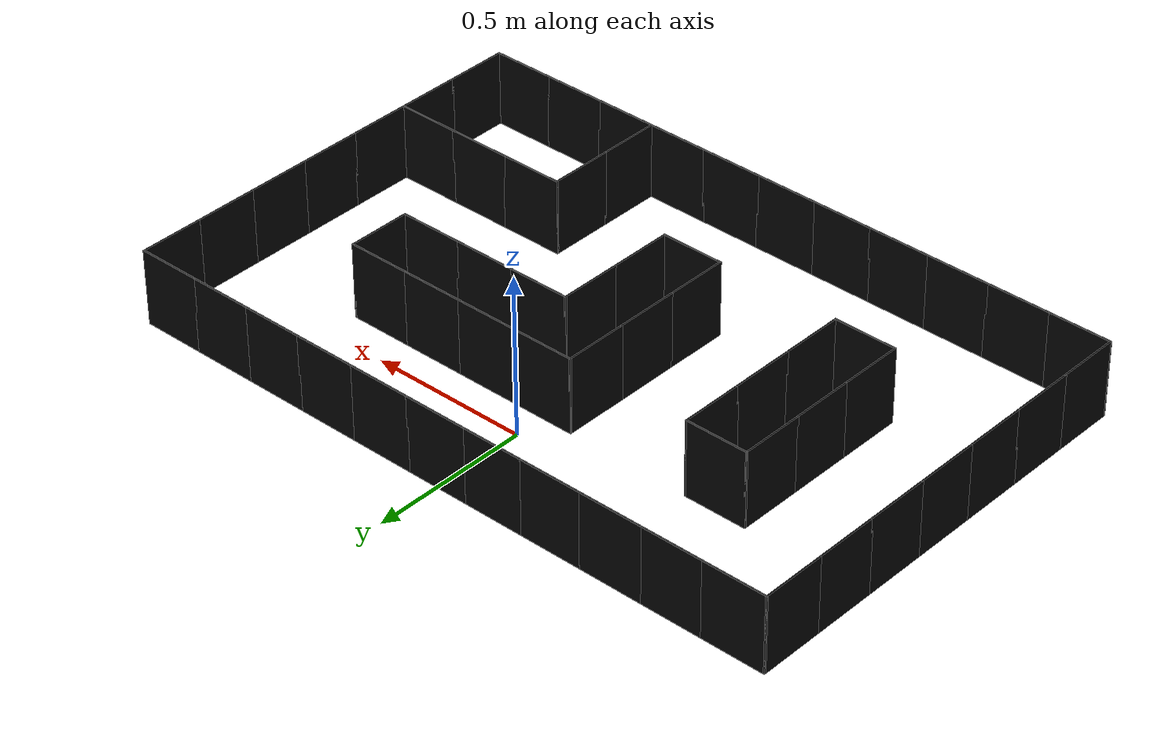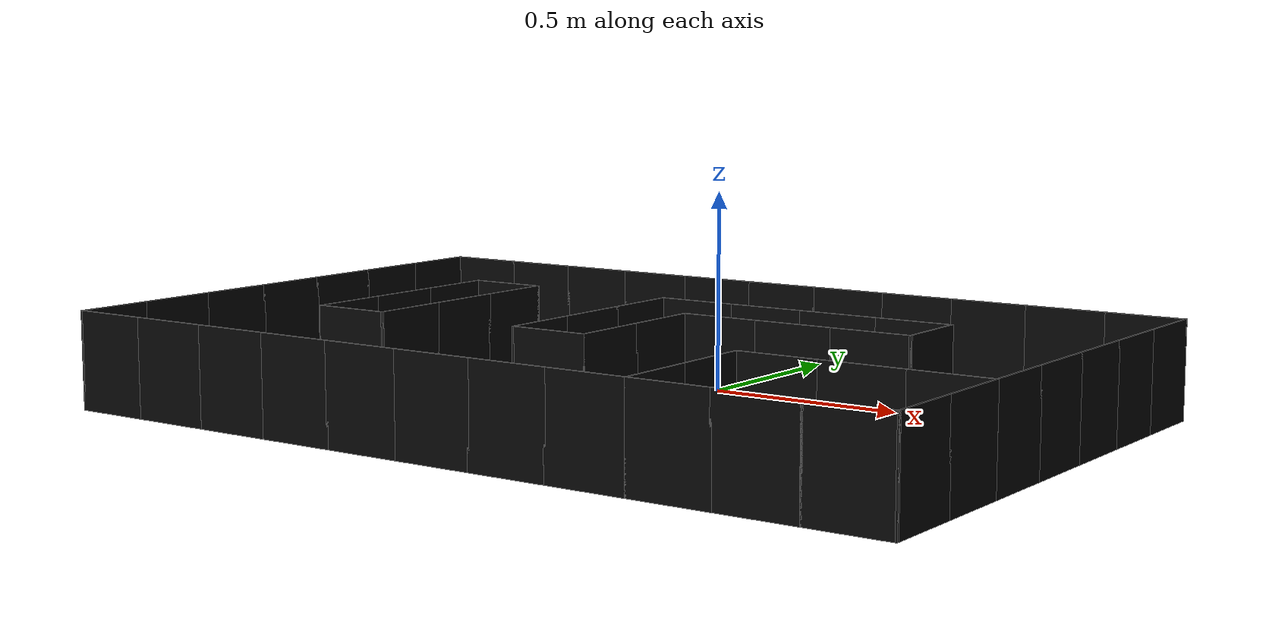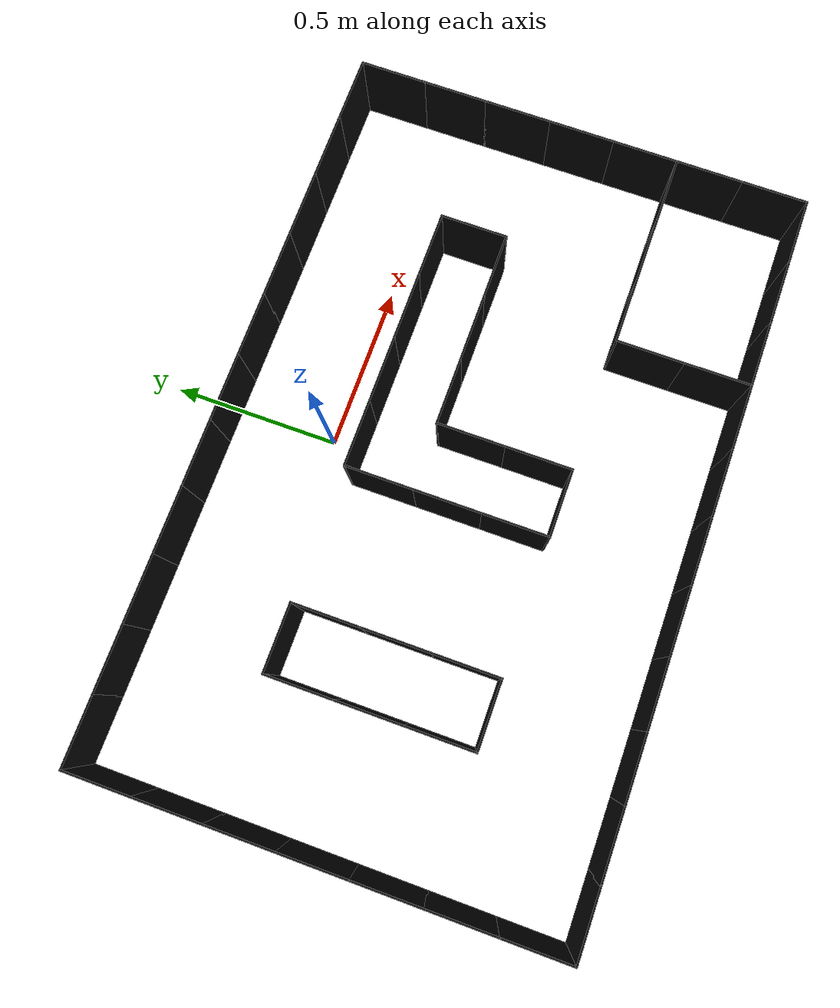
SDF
<?xml version="1.0" ?>
<sdf version="1.9">
  <model name="maze_grid">
    <static>true</static>
    <link name="h_0_0">
      <pose>-0.990 -1.089 0.120 0 0 0.000000</pose>
      <collision name="c">
        <geometry><box><size>0.203 0.005 0.240</size></box></geometry>
      </collision>
      <visual name="v">
        <geometry><box><size>0.203 0.005 0.240</size></box></geometry>
        <material>
          <ambient>0.01 0.01 0.01 1</ambient>
          <diffuse>0.02 0.02 0.02 1</diffuse>
        </material>
      </visual>
    </link>
    <link name="h_0_1">
      <pose>-0.792 -1.089 0.120 0 0 0.000000</pose>
      <collision name="c">
        <geometry><box><size>0.203 0.005 0.240</size></box></geometry>
      </collision>
      <visual name="v">
        <geometry><box><size>0.203 0.005 0.240</size></box></geometry>
        <material>
          <ambient>0.01 0.01 0.01 1</ambient>
          <diffuse>0.02 0.02 0.02 1</diffuse>
        </material>
      </visual>
    </link>
    <link name="h_0_2">
      <pose>-0.594 -1.089 0.120 0 0 0.000000</pose>
      <collision name="c">
        <geometry><box><size>0.203 0.005 0.240</size></box></geometry>
      </collision>
      <visual name="v">
        <geometry><box><size>0.203 0.005 0.240</size></box></geometry>
        <material>
          <ambient>0.01 0.01 0.01 1</ambient>
          <diffuse>0.02 0.02 0.02 1</diffuse>
        </material>
      </visual>
    </link>
    <link name="h_0_3">
      <pose>-0.396 -1.089 0.120 0 0 0.000000</pose>
      <collision name="c">
        <geometry><box><size>0.203 0.005 0.240</size></box></geometry>
      </collision>
      <visual name="v">
        <geometry><box><size>0.203 0.005 0.240</size></box></geometry>
        <material>
          <ambient>0.01 0.01 0.01 1</ambient>
          <diffuse>0.02 0.02 0.02 1</diffuse>
        </material>
      </visual>
    </link>
    <link name="h_0_4">
      <pose>-0.198 -1.089 0.120 0 0 0.000000</pose>
      <collision name="c">
        <geometry><box><size>0.203 0.005 0.240</size></box></geometry>
      </collision>
      <visual name="v">
        <geometry><box><size>0.203 0.005 0.240</size></box></geometry>
        <material>
          <ambient>0.01 0.01 0.01 1</ambient>
          <diffuse>0.02 0.02 0.02 1</diffuse>
        </material>
      </visual>
    </link>
    <link name="h_0_5">
      <pose>0.000 -1.089 0.120 0 0 0.000000</pose>
      <collision name="c">
        <geometry><box><size>0.203 0.005 0.240</size></box></geometry>
      </collision>
      <visual name="v">
        <geometry><box><size>0.203 0.005 0.240</size></box></geometry>
        <material>
          <ambient>0.01 0.01 0.01 1</ambient>
          <diffuse>0.02 0.02 0.02 1</diffuse>
        </material>
      </visual>
    </link>
    <link name="h_0_6">
      <pose>0.198 -1.089 0.120 0 0 0.000000</pose>
      <collision name="c">
        <geometry><box><size>0.203 0.005 0.240</size></box></geometry>
      </collision>
      <visual name="v">
        <geometry><box><size>0.203 0.005 0.240</size></box></geometry>
        <material>
          <ambient>0.01 0.01 0.01 1</ambient>
          <diffuse>0.02 0.02 0.02 1</diffuse>
        </material>
      </visual>
    </link>
    <link name="h_0_7">
      <pose>0.396 -1.089 0.120 0 0 0.000000</pose>
      <collision name="c">
        <geometry><box><size>0.203 0.005 0.240</size></box></geometry>
      </collision>
      <visual name="v">
        <geometry><box><size>0.203 0.005 0.240</size></box></geometry>
        <material>
          <ambient>0.01 0.01 0.01 1</ambient>
          <diffuse>0.02 0.02 0.02 1</diffuse>
        </material>
      </visual>
    </link>
    <link name="h_0_8">
      <pose>0.594 -1.089 0.120 0 0 0.000000</pose>
      <collision name="c">
        <geometry><box><size>0.203 0.005 0.240</size></box></geometry>
      </collision>
      <visual name="v">
        <geometry><box><size>0.203 0.005 0.240</size></box></geometry>
        <material>
          <ambient>0.01 0.01 0.01 1</ambient>
          <diffuse>0.02 0.02 0.02 1</diffuse>
        </material>
      </visual>
    </link>
    <link name="h_0_9">
      <pose>0.792 -1.089 0.120 0 0 0.000000</pose>
      <collision name="c">
        <geometry><box><size>0.203 0.005 0.240</size></box></geometry>
      </collision>
      <visual name="v">
        <geometry><box><size>0.203 0.005 0.240</size></box></geometry>
        <material>
          <ambient>0.01 0.01 0.01 1</ambient>
          <diffuse>0.02 0.02 0.02 1</diffuse>
        </material>
      </visual>
    </link>
    <link name="h_0_10">
      <pose>0.990 -1.089 0.120 0 0 0.000000</pose>
      <collision name="c">
        <geometry><box><size>0.203 0.005 0.240</size></box></geometry>
      </collision>
      <visual name="v">
        <geometry><box><size>0.203 0.005 0.240</size></box></geometry>
        <material>
          <ambient>0.01 0.01 0.01 1</ambient>
          <diffuse>0.02 0.02 0.02 1</diffuse>
        </material>
      </visual>
    </link>
    <link name="h_2_2">
      <pose>-0.594 -0.693 0.120 0 0 0.000000</pose>
      <collision name="c">
        <geometry><box><size>0.203 0.005 0.240</size></box></geometry>
      </collision>
      <visual name="v">
        <geometry><box><size>0.203 0.005 0.240</size></box></geometry>
        <material>
          <ambient>0.01 0.01 0.01 1</ambient>
          <diffuse>0.02 0.02 0.02 1</diffuse>
        </material>
      </visual>
    </link>
    <link name="h_2_5">
      <pose>0.000 -0.693 0.120 0 0 0.000000</pose>
      <collision name="c">
        <geometry><box><size>0.203 0.005 0.240</size></box></geometry>
      </collision>
      <visual name="v">
        <geometry><box><size>0.203 0.005 0.240</size></box></geometry>
        <material>
          <ambient>0.01 0.01 0.01 1</ambient>
          <diffuse>0.02 0.02 0.02 1</diffuse>
        </material>
      </visual>
    </link>
    <link name="h_2_8">
      <pose>0.594 -0.693 0.120 0 0 0.000000</pose>
      <collision name="c">
        <geometry><box><size>0.203 0.005 0.240</size></box></geometry>
      </collision>
      <visual name="v">
        <geometry><box><size>0.203 0.005 0.240</size></box></geometry>
        <material>
          <ambient>0.01 0.01 0.01 1</ambient>
          <diffuse>0.02 0.02 0.02 1</diffuse>
        </material>
      </visual>
    </link>
    <link name="h_2_9">
      <pose>0.792 -0.693 0.120 0 0 0.000000</pose>
      <collision name="c">
        <geometry><box><size>0.203 0.005 0.240</size></box></geometry>
      </collision>
      <visual name="v">
        <geometry><box><size>0.203 0.005 0.240</size></box></geometry>
        <material>
          <ambient>0.01 0.01 0.01 1</ambient>
          <diffuse>0.02 0.02 0.02 1</diffuse>
        </material>
      </visual>
    </link>
    <link name="h_2_10">
      <pose>0.990 -0.693 0.120 0 0 0.000000</pose>
      <collision name="c">
        <geometry><box><size>0.203 0.005 0.240</size></box></geometry>
      </collision>
      <visual name="v">
        <geometry><box><size>0.203 0.005 0.240</size></box></geometry>
        <material>
          <ambient>0.01 0.01 0.01 1</ambient>
          <diffuse>0.02 0.02 0.02 1</diffuse>
        </material>
      </visual>
    </link>
    <link name="h_4_6">
      <pose>0.198 -0.297 0.120 0 0 0.000000</pose>
      <collision name="c">
        <geometry><box><size>0.203 0.005 0.240</size></box></geometry>
      </collision>
      <visual name="v">
        <geometry><box><size>0.203 0.005 0.240</size></box></geometry>
        <material>
          <ambient>0.01 0.01 0.01 1</ambient>
          <diffuse>0.02 0.02 0.02 1</diffuse>
        </material>
      </visual>
    </link>
    <link name="h_4_7">
      <pose>0.396 -0.297 0.120 0 0 0.000000</pose>
      <collision name="c">
        <geometry><box><size>0.203 0.005 0.240</size></box></geometry>
      </collision>
      <visual name="v">
        <geometry><box><size>0.203 0.005 0.240</size></box></geometry>
        <material>
          <ambient>0.01 0.01 0.01 1</ambient>
          <diffuse>0.02 0.02 0.02 1</diffuse>
        </material>
      </visual>
    </link>
    <link name="h_4_8">
      <pose>0.594 -0.297 0.120 0 0 0.000000</pose>
      <collision name="c">
        <geometry><box><size>0.203 0.005 0.240</size></box></geometry>
      </collision>
      <visual name="v">
        <geometry><box><size>0.203 0.005 0.240</size></box></geometry>
        <material>
          <ambient>0.01 0.01 0.01 1</ambient>
          <diffuse>0.02 0.02 0.02 1</diffuse>
        </material>
      </visual>
    </link>
    <link name="h_5_2">
      <pose>-0.594 -0.099 0.120 0 0 0.000000</pose>
      <collision name="c">
        <geometry><box><size>0.203 0.005 0.240</size></box></geometry>
      </collision>
      <visual name="v">
        <geometry><box><size>0.203 0.005 0.240</size></box></geometry>
        <material>
          <ambient>0.01 0.01 0.01 1</ambient>
          <diffuse>0.02 0.02 0.02 1</diffuse>
        </material>
      </visual>
    </link>
    <link name="h_5_5">
      <pose>0.000 -0.099 0.120 0 0 0.000000</pose>
      <collision name="c">
        <geometry><box><size>0.203 0.005 0.240</size></box></geometry>
      </collision>
      <visual name="v">
        <geometry><box><size>0.203 0.005 0.240</size></box></geometry>
        <material>
          <ambient>0.01 0.01 0.01 1</ambient>
          <diffuse>0.02 0.02 0.02 1</diffuse>
        </material>
      </visual>
    </link>
    <link name="h_5_6">
      <pose>0.198 -0.099 0.120 0 0 0.000000</pose>
      <collision name="c">
        <geometry><box><size>0.203 0.005 0.240</size></box></geometry>
      </collision>
      <visual name="v">
        <geometry><box><size>0.203 0.005 0.240</size></box></geometry>
        <material>
          <ambient>0.01 0.01 0.01 1</ambient>
          <diffuse>0.02 0.02 0.02 1</diffuse>
        </material>
      </visual>
    </link>
    <link name="h_5_7">
      <pose>0.396 -0.099 0.120 0 0 0.000000</pose>
      <collision name="c">
        <geometry><box><size>0.203 0.005 0.240</size></box></geometry>
      </collision>
      <visual name="v">
        <geometry><box><size>0.203 0.005 0.240</size></box></geometry>
        <material>
          <ambient>0.01 0.01 0.01 1</ambient>
          <diffuse>0.02 0.02 0.02 1</diffuse>
        </material>
      </visual>
    </link>
    <link name="h_5_8">
      <pose>0.594 -0.099 0.120 0 0 0.000000</pose>
      <collision name="c">
        <geometry><box><size>0.203 0.005 0.240</size></box></geometry>
      </collision>
      <visual name="v">
        <geometry><box><size>0.203 0.005 0.240</size></box></geometry>
        <material>
          <ambient>0.01 0.01 0.01 1</ambient>
          <diffuse>0.02 0.02 0.02 1</diffuse>
        </material>
      </visual>
    </link>
    <link name="h_7_0">
      <pose>-0.990 0.297 0.120 0 0 0.000000</pose>
      <collision name="c">
        <geometry><box><size>0.203 0.005 0.240</size></box></geometry>
      </collision>
      <visual name="v">
        <geometry><box><size>0.203 0.005 0.240</size></box></geometry>
        <material>
          <ambient>0.01 0.01 0.01 1</ambient>
          <diffuse>0.02 0.02 0.02 1</diffuse>
        </material>
      </visual>
    </link>
    <link name="h_7_1">
      <pose>-0.792 0.297 0.120 0 0 0.000000</pose>
      <collision name="c">
        <geometry><box><size>0.203 0.005 0.240</size></box></geometry>
      </collision>
      <visual name="v">
        <geometry><box><size>0.203 0.005 0.240</size></box></geometry>
        <material>
          <ambient>0.01 0.01 0.01 1</ambient>
          <diffuse>0.02 0.02 0.02 1</diffuse>
        </material>
      </visual>
    </link>
    <link name="h_7_2">
      <pose>-0.594 0.297 0.120 0 0 0.000000</pose>
      <collision name="c">
        <geometry><box><size>0.203 0.005 0.240</size></box></geometry>
      </collision>
      <visual name="v">
        <geometry><box><size>0.203 0.005 0.240</size></box></geometry>
        <material>
          <ambient>0.01 0.01 0.01 1</ambient>
          <diffuse>0.02 0.02 0.02 1</diffuse>
        </material>
      </visual>
    </link>
    <link name="h_7_3">
      <pose>-0.396 0.297 0.120 0 0 0.000000</pose>
      <collision name="c">
        <geometry><box><size>0.203 0.005 0.240</size></box></geometry>
      </collision>
      <visual name="v">
        <geometry><box><size>0.203 0.005 0.240</size></box></geometry>
        <material>
          <ambient>0.01 0.01 0.01 1</ambient>
          <diffuse>0.02 0.02 0.02 1</diffuse>
        </material>
      </visual>
    </link>
    <link name="h_7_4">
      <pose>-0.198 0.297 0.120 0 0 0.000000</pose>
      <collision name="c">
        <geometry><box><size>0.203 0.005 0.240</size></box></geometry>
      </collision>
      <visual name="v">
        <geometry><box><size>0.203 0.005 0.240</size></box></geometry>
        <material>
          <ambient>0.01 0.01 0.01 1</ambient>
          <diffuse>0.02 0.02 0.02 1</diffuse>
        </material>
      </visual>
    </link>
    <link name="h_7_5">
      <pose>0.000 0.297 0.120 0 0 0.000000</pose>
      <collision name="c">
        <geometry><box><size>0.203 0.005 0.240</size></box></geometry>
      </collision>
      <visual name="v">
        <geometry><box><size>0.203 0.005 0.240</size></box></geometry>
        <material>
          <ambient>0.01 0.01 0.01 1</ambient>
          <diffuse>0.02 0.02 0.02 1</diffuse>
        </material>
      </visual>
    </link>
    <link name="h_7_6">
      <pose>0.198 0.297 0.120 0 0 0.000000</pose>
      <collision name="c">
        <geometry><box><size>0.203 0.005 0.240</size></box></geometry>
      </collision>
      <visual name="v">
        <geometry><box><size>0.203 0.005 0.240</size></box></geometry>
        <material>
          <ambient>0.01 0.01 0.01 1</ambient>
          <diffuse>0.02 0.02 0.02 1</diffuse>
        </material>
      </visual>
    </link>
    <link name="h_7_7">
      <pose>0.396 0.297 0.120 0 0 0.000000</pose>
      <collision name="c">
        <geometry><box><size>0.203 0.005 0.240</size></box></geometry>
      </collision>
      <visual name="v">
        <geometry><box><size>0.203 0.005 0.240</size></box></geometry>
        <material>
          <ambient>0.01 0.01 0.01 1</ambient>
          <diffuse>0.02 0.02 0.02 1</diffuse>
        </material>
      </visual>
    </link>
    <link name="h_7_8">
      <pose>0.594 0.297 0.120 0 0 0.000000</pose>
      <collision name="c">
        <geometry><box><size>0.203 0.005 0.240</size></box></geometry>
      </collision>
      <visual name="v">
        <geometry><box><size>0.203 0.005 0.240</size></box></geometry>
        <material>
          <ambient>0.01 0.01 0.01 1</ambient>
          <diffuse>0.02 0.02 0.02 1</diffuse>
        </material>
      </visual>
    </link>
    <link name="h_7_9">
      <pose>0.792 0.297 0.120 0 0 0.000000</pose>
      <collision name="c">
        <geometry><box><size>0.203 0.005 0.240</size></box></geometry>
      </collision>
      <visual name="v">
        <geometry><box><size>0.203 0.005 0.240</size></box></geometry>
        <material>
          <ambient>0.01 0.01 0.01 1</ambient>
          <diffuse>0.02 0.02 0.02 1</diffuse>
        </material>
      </visual>
    </link>
    <link name="h_7_10">
      <pose>0.990 0.297 0.120 0 0 0.000000</pose>
      <collision name="c">
        <geometry><box><size>0.203 0.005 0.240</size></box></geometry>
      </collision>
      <visual name="v">
        <geometry><box><size>0.203 0.005 0.240</size></box></geometry>
        <material>
          <ambient>0.01 0.01 0.01 1</ambient>
          <diffuse>0.02 0.02 0.02 1</diffuse>
        </material>
      </visual>
    </link>
    <link name="v_0_0">
      <pose>-1.089 -0.990 0.120 0 0 1.570796</pose>
      <collision name="c">
        <geometry><box><size>0.203 0.005 0.240</size></box></geometry>
      </collision>
      <visual name="v">
        <geometry><box><size>0.203 0.005 0.240</size></box></geometry>
        <material>
          <ambient>0.01 0.01 0.01 1</ambient>
          <diffuse>0.02 0.02 0.02 1</diffuse>
        </material>
      </visual>
    </link>
    <link name="v_0_1">
      <pose>-1.089 -0.792 0.120 0 0 1.570796</pose>
      <collision name="c">
        <geometry><box><size>0.203 0.005 0.240</size></box></geometry>
      </collision>
      <visual name="v">
        <geometry><box><size>0.203 0.005 0.240</size></box></geometry>
        <material>
          <ambient>0.01 0.01 0.01 1</ambient>
          <diffuse>0.02 0.02 0.02 1</diffuse>
        </material>
      </visual>
    </link>
    <link name="v_0_2">
      <pose>-1.089 -0.594 0.120 0 0 1.570796</pose>
      <collision name="c">
        <geometry><box><size>0.203 0.005 0.240</size></box></geometry>
      </collision>
      <visual name="v">
        <geometry><box><size>0.203 0.005 0.240</size></box></geometry>
        <material>
          <ambient>0.01 0.01 0.01 1</ambient>
          <diffuse>0.02 0.02 0.02 1</diffuse>
        </material>
      </visual>
    </link>
    <link name="v_0_3">
      <pose>-1.089 -0.396 0.120 0 0 1.570796</pose>
      <collision name="c">
        <geometry><box><size>0.203 0.005 0.240</size></box></geometry>
      </collision>
      <visual name="v">
        <geometry><box><size>0.203 0.005 0.240</size></box></geometry>
        <material>
          <ambient>0.01 0.01 0.01 1</ambient>
          <diffuse>0.02 0.02 0.02 1</diffuse>
        </material>
      </visual>
    </link>
    <link name="v_0_4">
      <pose>-1.089 -0.198 0.120 0 0 1.570796</pose>
      <collision name="c">
        <geometry><box><size>0.203 0.005 0.240</size></box></geometry>
      </collision>
      <visual name="v">
        <geometry><box><size>0.203 0.005 0.240</size></box></geometry>
        <material>
          <ambient>0.01 0.01 0.01 1</ambient>
          <diffuse>0.02 0.02 0.02 1</diffuse>
        </material>
      </visual>
    </link>
    <link name="v_0_5">
      <pose>-1.089 0.000 0.120 0 0 1.570796</pose>
      <collision name="c">
        <geometry><box><size>0.203 0.005 0.240</size></box></geometry>
      </collision>
      <visual name="v">
        <geometry><box><size>0.203 0.005 0.240</size></box></geometry>
        <material>
          <ambient>0.01 0.01 0.01 1</ambient>
          <diffuse>0.02 0.02 0.02 1</diffuse>
        </material>
      </visual>
    </link>
    <link name="v_0_6">
      <pose>-1.089 0.198 0.120 0 0 1.570796</pose>
      <collision name="c">
        <geometry><box><size>0.203 0.005 0.240</size></box></geometry>
      </collision>
      <visual name="v">
        <geometry><box><size>0.203 0.005 0.240</size></box></geometry>
        <material>
          <ambient>0.01 0.01 0.01 1</ambient>
          <diffuse>0.02 0.02 0.02 1</diffuse>
        </material>
      </visual>
    </link>
    <link name="v_2_2">
      <pose>-0.693 -0.594 0.120 0 0 1.570796</pose>
      <collision name="c">
        <geometry><box><size>0.203 0.005 0.240</size></box></geometry>
      </collision>
      <visual name="v">
        <geometry><box><size>0.203 0.005 0.240</size></box></geometry>
        <material>
          <ambient>0.01 0.01 0.01 1</ambient>
          <diffuse>0.02 0.02 0.02 1</diffuse>
        </material>
      </visual>
    </link>
    <link name="v_2_3">
      <pose>-0.693 -0.396 0.120 0 0 1.570796</pose>
      <collision name="c">
        <geometry><box><size>0.203 0.005 0.240</size></box></geometry>
      </collision>
      <visual name="v">
        <geometry><box><size>0.203 0.005 0.240</size></box></geometry>
        <material>
          <ambient>0.01 0.01 0.01 1</ambient>
          <diffuse>0.02 0.02 0.02 1</diffuse>
        </material>
      </visual>
    </link>
    <link name="v_2_4">
      <pose>-0.693 -0.198 0.120 0 0 1.570796</pose>
      <collision name="c">
        <geometry><box><size>0.203 0.005 0.240</size></box></geometry>
      </collision>
      <visual name="v">
        <geometry><box><size>0.203 0.005 0.240</size></box></geometry>
        <material>
          <ambient>0.01 0.01 0.01 1</ambient>
          <diffuse>0.02 0.02 0.02 1</diffuse>
        </material>
      </visual>
    </link>
    <link name="v_3_2">
      <pose>-0.495 -0.594 0.120 0 0 1.570796</pose>
      <collision name="c">
        <geometry><box><size>0.203 0.005 0.240</size></box></geometry>
      </collision>
      <visual name="v">
        <geometry><box><size>0.203 0.005 0.240</size></box></geometry>
        <material>
          <ambient>0.01 0.01 0.01 1</ambient>
          <diffuse>0.02 0.02 0.02 1</diffuse>
        </material>
      </visual>
    </link>
    <link name="v_3_3">
      <pose>-0.495 -0.396 0.120 0 0 1.570796</pose>
      <collision name="c">
        <geometry><box><size>0.203 0.005 0.240</size></box></geometry>
      </collision>
      <visual name="v">
        <geometry><box><size>0.203 0.005 0.240</size></box></geometry>
        <material>
          <ambient>0.01 0.01 0.01 1</ambient>
          <diffuse>0.02 0.02 0.02 1</diffuse>
        </material>
      </visual>
    </link>
    <link name="v_3_4">
      <pose>-0.495 -0.198 0.120 0 0 1.570796</pose>
      <collision name="c">
        <geometry><box><size>0.203 0.005 0.240</size></box></geometry>
      </collision>
      <visual name="v">
        <geometry><box><size>0.203 0.005 0.240</size></box></geometry>
        <material>
          <ambient>0.01 0.01 0.01 1</ambient>
          <diffuse>0.02 0.02 0.02 1</diffuse>
        </material>
      </visual>
    </link>
    <link name="v_5_2">
      <pose>-0.099 -0.594 0.120 0 0 1.570796</pose>
      <collision name="c">
        <geometry><box><size>0.203 0.005 0.240</size></box></geometry>
      </collision>
      <visual name="v">
        <geometry><box><size>0.203 0.005 0.240</size></box></geometry>
        <material>
          <ambient>0.01 0.01 0.01 1</ambient>
          <diffuse>0.02 0.02 0.02 1</diffuse>
        </material>
      </visual>
    </link>
    <link name="v_5_3">
      <pose>-0.099 -0.396 0.120 0 0 1.570796</pose>
      <collision name="c">
        <geometry><box><size>0.203 0.005 0.240</size></box></geometry>
      </collision>
      <visual name="v">
        <geometry><box><size>0.203 0.005 0.240</size></box></geometry>
        <material>
          <ambient>0.01 0.01 0.01 1</ambient>
          <diffuse>0.02 0.02 0.02 1</diffuse>
        </material>
      </visual>
    </link>
    <link name="v_5_4">
      <pose>-0.099 -0.198 0.120 0 0 1.570796</pose>
      <collision name="c">
        <geometry><box><size>0.203 0.005 0.240</size></box></geometry>
      </collision>
      <visual name="v">
        <geometry><box><size>0.203 0.005 0.240</size></box></geometry>
        <material>
          <ambient>0.01 0.01 0.01 1</ambient>
          <diffuse>0.02 0.02 0.02 1</diffuse>
        </material>
      </visual>
    </link>
    <link name="v_6_2">
      <pose>0.099 -0.594 0.120 0 0 1.570796</pose>
      <collision name="c">
        <geometry><box><size>0.203 0.005 0.240</size></box></geometry>
      </collision>
      <visual name="v">
        <geometry><box><size>0.203 0.005 0.240</size></box></geometry>
        <material>
          <ambient>0.01 0.01 0.01 1</ambient>
          <diffuse>0.02 0.02 0.02 1</diffuse>
        </material>
      </visual>
    </link>
    <link name="v_6_3">
      <pose>0.099 -0.396 0.120 0 0 1.570796</pose>
      <collision name="c">
        <geometry><box><size>0.203 0.005 0.240</size></box></geometry>
      </collision>
      <visual name="v">
        <geometry><box><size>0.203 0.005 0.240</size></box></geometry>
        <material>
          <ambient>0.01 0.01 0.01 1</ambient>
          <diffuse>0.02 0.02 0.02 1</diffuse>
        </material>
      </visual>
    </link>
    <link name="v_8_0">
      <pose>0.495 -0.990 0.120 0 0 1.570796</pose>
      <collision name="c">
        <geometry><box><size>0.203 0.005 0.240</size></box></geometry>
      </collision>
      <visual name="v">
        <geometry><box><size>0.203 0.005 0.240</size></box></geometry>
        <material>
          <ambient>0.01 0.01 0.01 1</ambient>
          <diffuse>0.02 0.02 0.02 1</diffuse>
        </material>
      </visual>
    </link>
    <link name="v_8_1">
      <pose>0.495 -0.792 0.120 0 0 1.570796</pose>
      <collision name="c">
        <geometry><box><size>0.203 0.005 0.240</size></box></geometry>
      </collision>
      <visual name="v">
        <geometry><box><size>0.203 0.005 0.240</size></box></geometry>
        <material>
          <ambient>0.01 0.01 0.01 1</ambient>
          <diffuse>0.02 0.02 0.02 1</diffuse>
        </material>
      </visual>
    </link>
    <link name="v_9_4">
      <pose>0.693 -0.198 0.120 0 0 1.570796</pose>
      <collision name="c">
        <geometry><box><size>0.203 0.005 0.240</size></box></geometry>
      </collision>
      <visual name="v">
        <geometry><box><size>0.203 0.005 0.240</size></box></geometry>
        <material>
          <ambient>0.01 0.01 0.01 1</ambient>
          <diffuse>0.02 0.02 0.02 1</diffuse>
        </material>
      </visual>
    </link>
    <link name="v_11_0">
      <pose>1.089 -0.990 0.120 0 0 1.570796</pose>
      <collision name="c">
        <geometry><box><size>0.203 0.005 0.240</size></box></geometry>
      </collision>
      <visual name="v">
        <geometry><box><size>0.203 0.005 0.240</size></box></geometry>
        <material>
          <ambient>0.01 0.01 0.01 1</ambient>
          <diffuse>0.02 0.02 0.02 1</diffuse>
        </material>
      </visual>
    </link>
    <link name="v_11_1">
      <pose>1.089 -0.792 0.120 0 0 1.570796</pose>
      <collision name="c">
        <geometry><box><size>0.203 0.005 0.240</size></box></geometry>
      </collision>
      <visual name="v">
        <geometry><box><size>0.203 0.005 0.240</size></box></geometry>
        <material>
          <ambient>0.01 0.01 0.01 1</ambient>
          <diffuse>0.02 0.02 0.02 1</diffuse>
        </material>
      </visual>
    </link>
    <link name="v_11_2">
      <pose>1.089 -0.594 0.120 0 0 1.570796</pose>
      <collision name="c">
        <geometry><box><size>0.203 0.005 0.240</size></box></geometry>
      </collision>
      <visual name="v">
        <geometry><box><size>0.203 0.005 0.240</size></box></geometry>
        <material>
          <ambient>0.01 0.01 0.01 1</ambient>
          <diffuse>0.02 0.02 0.02 1</diffuse>
        </material>
      </visual>
    </link>
    <link name="v_11_3">
      <pose>1.089 -0.396 0.120 0 0 1.570796</pose>
      <collision name="c">
        <geometry><box><size>0.203 0.005 0.240</size></box></geometry>
      </collision>
      <visual name="v">
        <geometry><box><size>0.203 0.005 0.240</size></box></geometry>
        <material>
          <ambient>0.01 0.01 0.01 1</ambient>
          <diffuse>0.02 0.02 0.02 1</diffuse>
        </material>
      </visual>
    </link>
    <link name="v_11_4">
      <pose>1.089 -0.198 0.120 0 0 1.570796</pose>
      <collision name="c">
        <geometry><box><size>0.203 0.005 0.240</size></box></geometry>
      </collision>
      <visual name="v">
        <geometry><box><size>0.203 0.005 0.240</size></box></geometry>
        <material>
          <ambient>0.01 0.01 0.01 1</ambient>
          <diffuse>0.02 0.02 0.02 1</diffuse>
        </material>
      </visual>
    </link>
    <link name="v_11_5">
      <pose>1.089 0.000 0.120 0 0 1.570796</pose>
      <collision name="c">
        <geometry><box><size>0.203 0.005 0.240</size></box></geometry>
      </collision>
      <visual name="v">
        <geometry><box><size>0.203 0.005 0.240</size></box></geometry>
        <material>
          <ambient>0.01 0.01 0.01 1</ambient>
          <diffuse>0.02 0.02 0.02 1</diffuse>
        </material>
      </visual>
    </link>
    <link name="v_11_6">
      <pose>1.089 0.198 0.120 0 0 1.570796</pose>
      <collision name="c">
        <geometry><box><size>0.203 0.005 0.240</size></box></geometry>
      </collision>
      <visual name="v">
        <geometry><box><size>0.203 0.005 0.240</size></box></geometry>
        <material>
          <ambient>0.01 0.01 0.01 1</ambient>
          <diffuse>0.02 0.02 0.02 1</diffuse>
        </material>
      </visual>
    </link>
  </model>
</sdf>
